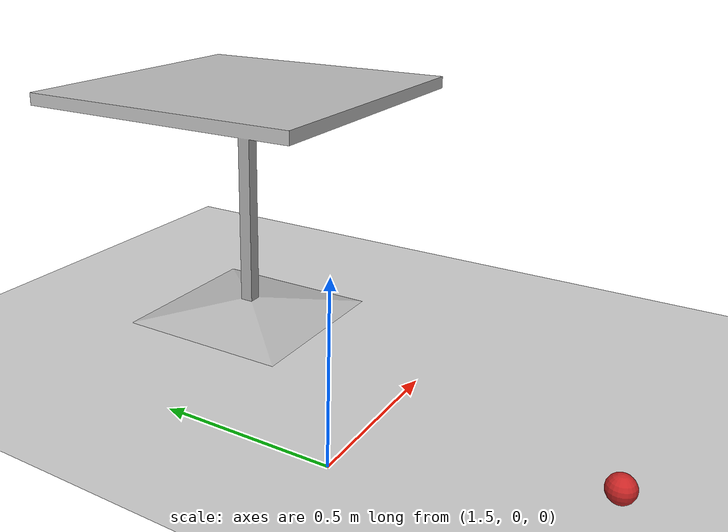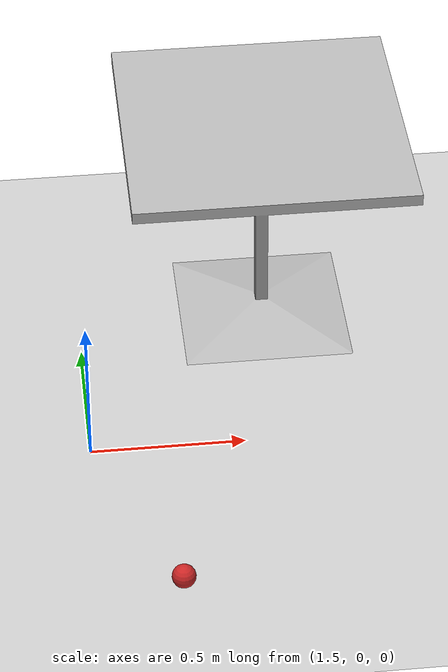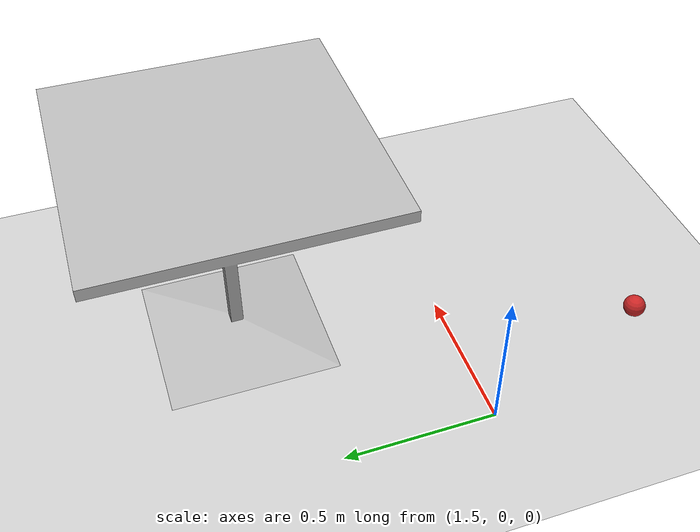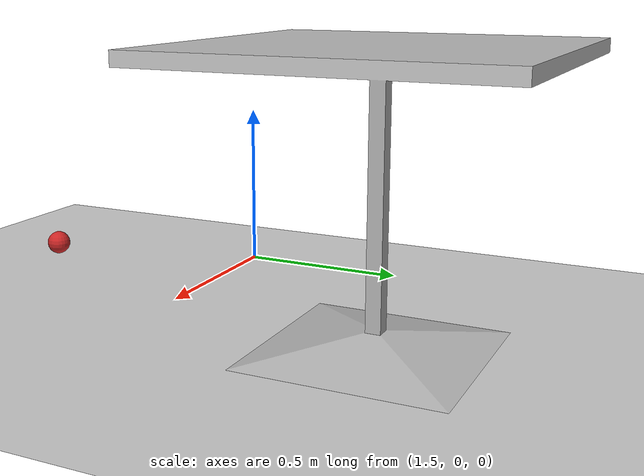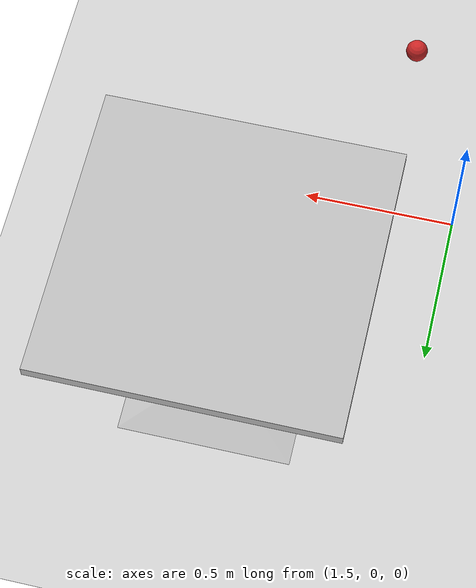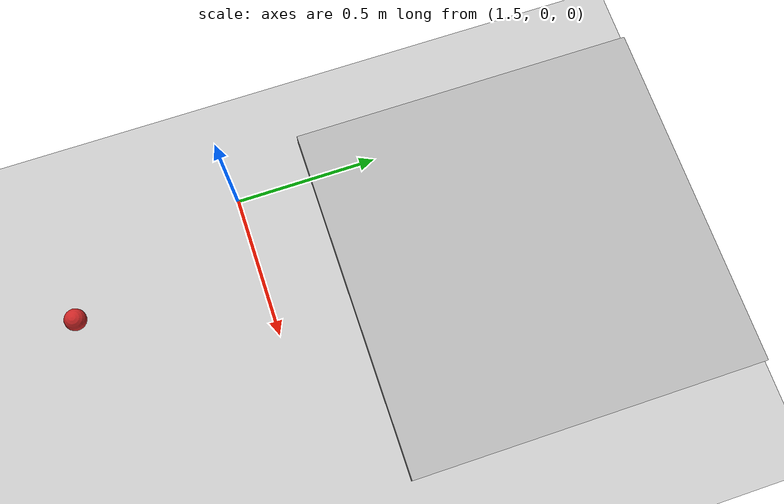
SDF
<sdf version="1.6">
 <world name="default">
  <light name="sun" type="directional">
   <pose>0 0 10 0 -0 0</pose>
   <diffuse>0.8 0.8 0.8 1</diffuse>
   <specular>0.2 0.2 0.2 1</specular>
   <attenuation>
    <range>1000</range>
    <constant>0.9</constant>
    <linear>0.01</linear>
    <quadratic>0.001</quadratic>
   </attenuation>
   <direction>-0.5 0.1 -0.9</direction>
  </light>
  <model name="ground_plane">
   <static>1</static>
   <link name="link">
    <collision name="collision">
     <geometry><plane><normal>0 0 1</normal><size>100 100</size></plane></geometry>
     <surface>
      <contact><collide_bitmask>65535</collide_bitmask></contact>
      <friction><ode><mu>100</mu><mu2>50</mu2></ode></friction>
     </surface>
    </collision>
    <visual name="visual">
     <cast_shadows>0</cast_shadows>
     <geometry><plane><normal>0 0 1</normal><size>100 100</size></plane></geometry>
     <material>
      <script><uri>file://media/materials/scripts/gazebo.material</uri><name>Gazebo/Grey</name></script>
     </material>
    </visual>
   </link>
  </model>
  <gravity>0 0 -9.8</gravity>
  <magnetic_field>6e-06 2.3e-05 -4.2e-05</magnetic_field>
  <atmosphere type="adiabatic"/>
  <physics name="default_physics" default="0" type="ode">
   <max_step_size>0.001</max_step_size>
   <real_time_factor>1</real_time_factor>
   <real_time_update_rate>1000</real_time_update_rate>
  </physics>
  <scene><ambient>0.4 0.4 0.4 1</ambient><background>0.7 0.7 0.7 1</background><shadows>1</shadows></scene>
  <spherical_coordinates>
   <surface_model>EARTH_WGS84</surface_model>
   <latitude_deg>0</latitude_deg>
   <longitude_deg>0</longitude_deg>
   <elevation>0</elevation>
   <heading_deg>0</heading_deg>
  </spherical_coordinates>
  <model name="cafe_table">
   <static>1</static>
   <link name="link">
    <collision name="surface">
     <pose>0 0 0.755 0 -0 0</pose>
     <geometry><box><size>0.913 0.913 0.04</size></box></geometry>
    </collision>
    <collision name="column">
     <pose>0 0 0.37 0 -0 0</pose>
     <geometry><box><size>0.042 0.042 0.74</size></box></geometry>
    </collision>
    <collision name="base">
     <pose>0 0 0.02 0 -0 0</pose>
     <geometry><box><size>0.56 0.56 0.04</size></box></geometry>
    </collision>
    <visual name="visual">
     <geometry><mesh><uri>model://cafe_table/meshes/cafe_table.dae</uri></mesh></geometry>
    </visual>
   </link>
   <pose>2.12678 0.676811 0 0 -0 0</pose>
  </model>
  <model name="cricket_ball">
   <link name="link">
    <pose>0 0 0.0375 0 -0 0</pose>
    <inertial>
     <mass>0.1467</mass>
     <inertia>
      <ixx>8.25187e-05</ixx>
      <ixy>0</ixy>
      <ixz>0</ixz>
      <iyy>8.25187e-05</iyy>
      <iyz>0</iyz>
      <izz>8.25187e-05</izz>
     </inertia>
    </inertial>
    <collision name="collision">
     <geometry><sphere><radius>0.0375</radius></sphere></geometry>
     <surface>
      <contact>
       <poissons_ratio>0.347</poissons_ratio>
       <elastic_modulus>8.8e+09</elastic_modulus>
       <ode><kp>100000</kp><kd>100</kd><max_vel>100</max_vel><min_depth>0.001</min_depth></ode>
      </contact>
      <friction>
       <torsional>
        <coefficient>1</coefficient>
        <use_patch_radius>0</use_patch_radius>
        <surface_radius>0.01</surface_radius>
       </torsional>
      </friction>
     </surface>
    </collision>
    <visual name="visual">
     <geometry><sphere><radius>0.0375</radius></sphere></geometry>
     <material>
      <script><uri>file://media/materials/scripts/gazebo.material</uri><name>Gazebo/Red</name></script>
     </material>
    </visual>
    <velocity_decay><linear>0</linear><angular>0.005</angular></velocity_decay>
   </link>
   <pose>1.74303 -0.631603 -0.001014 0 -0 0</pose>
  </model>
 </world>
</sdf>
